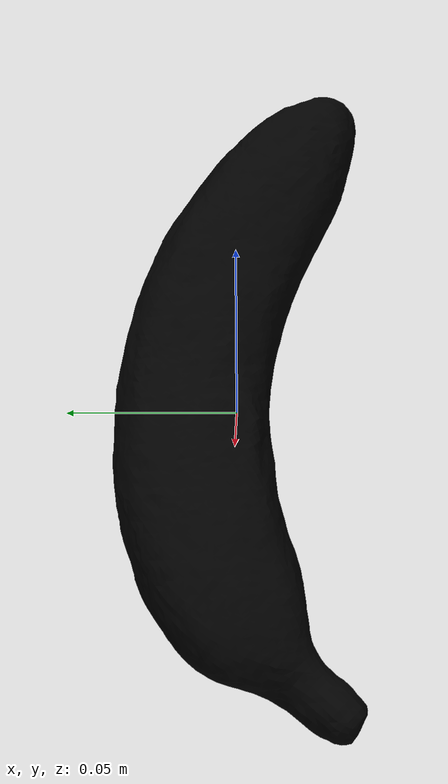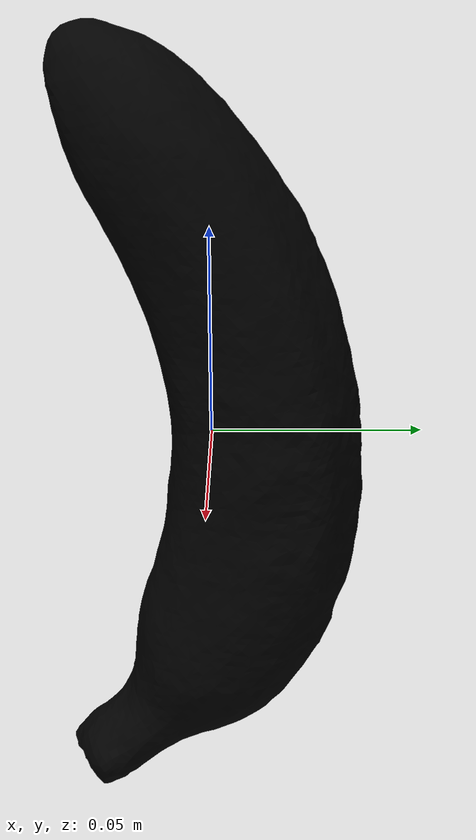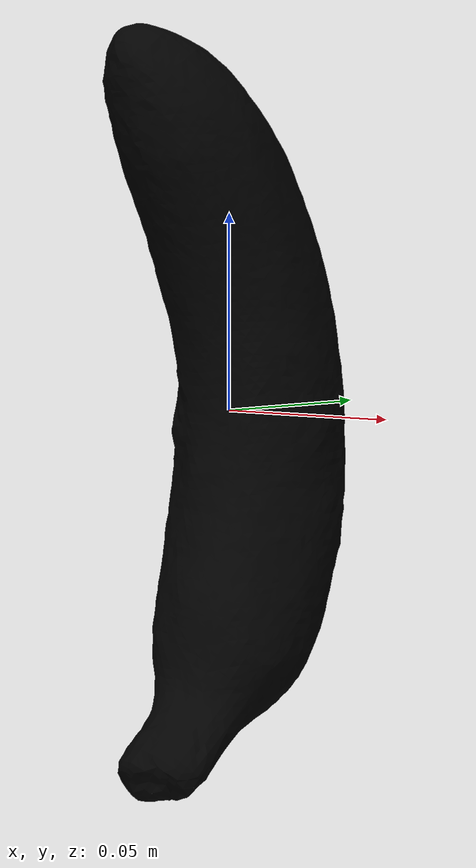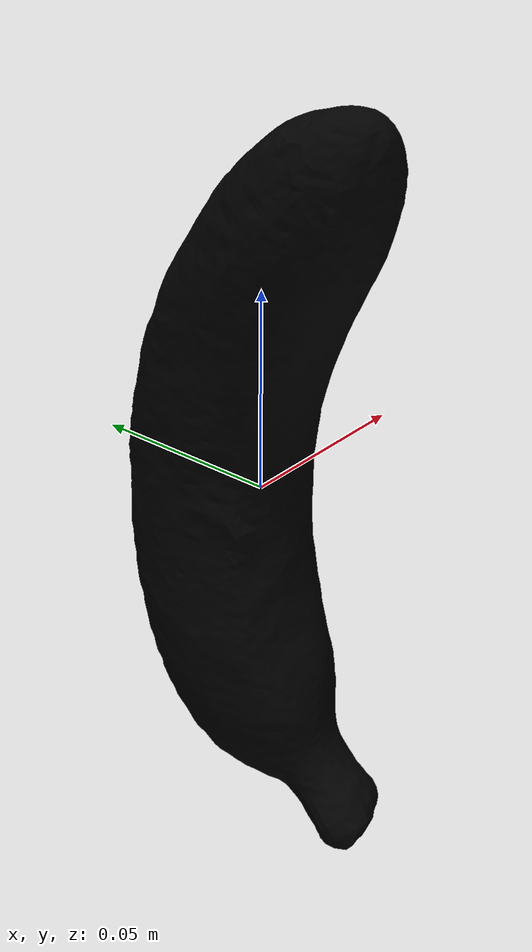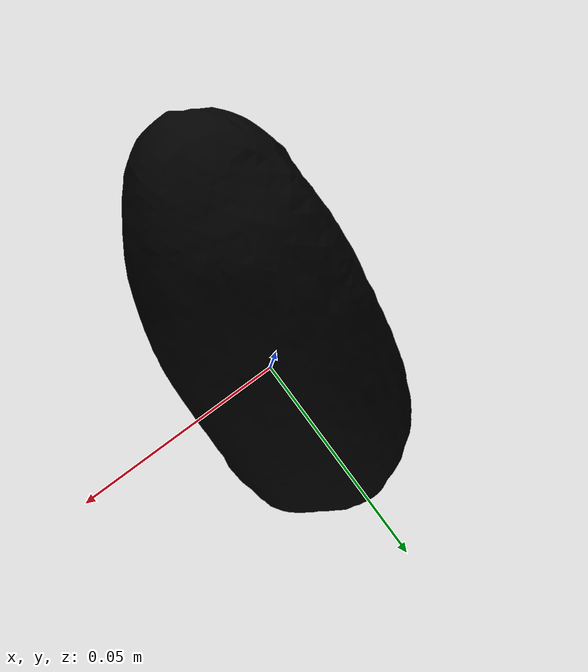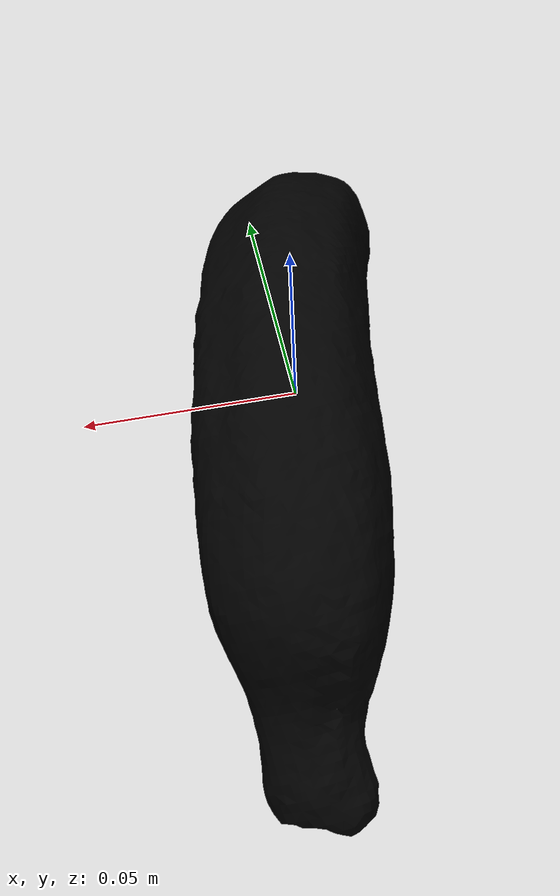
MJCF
<mujoco>
    <asset>
        <mesh name="C_banana1" file="Collision/banana21.stl" scale="0.95 0.95 1.0"/>
        <mesh name="C_banana2" file="Collision/banana22.stl" scale="0.95 0.95 1.0"/>
        <mesh name="C_banana3" file="Collision/banana23.stl" scale="0.95 0.95 1.0"/>
        <mesh name="V_banana" file="Visual/banana.stl"/>
        <material name="object" specular="0" shininess="0" reflectance="0" rgba="0 0 0 1.0"/>
        <material name="object_ref" specular="0" shininess="0" reflectance="0" rgba="0 0 0 1.0"/>
    </asset>
    <worldbody>
        <body name="banana" pos="0 0 0" quat="1 0 0 0">
            <geom name = "C_banana1" condim="3" density="125" friction="1 0.5 0.1" group="4" conaffinity="1" contype="1"
                  solref="-6000 -300" solimp="1.0 0.95 0.001 0.5 2" mesh="C_banana1" type="mesh" material="object"/>
            <geom name = "C_banana2" condim="3" density="125" friction="1 0.5 0.1" group="4" conaffinity="1" contype="1"
                  solref="-6000 -300" solimp="1.0 0.95 0.001 0.5 2" mesh="C_banana2" type="mesh" material="object"/>
            <geom name = "C_banana3" condim="3" density="125" friction="1 0.5 0.1" group="4" conaffinity="1" contype="1"
                  solref="-6000 -300" solimp="1.0 0.95 0.001 0.5 2" mesh="C_banana3" type="mesh" material="object"/>
            <geom name = "V_banana" density="0" conaffinity="0" contype="0" group="1" mesh="V_banana" type="mesh" material="object"/>
            <joint armature="0.001" damping="0" frictionloss="0.001" limited="false" type="free" />
        </body>
    </worldbody>
</mujoco>
